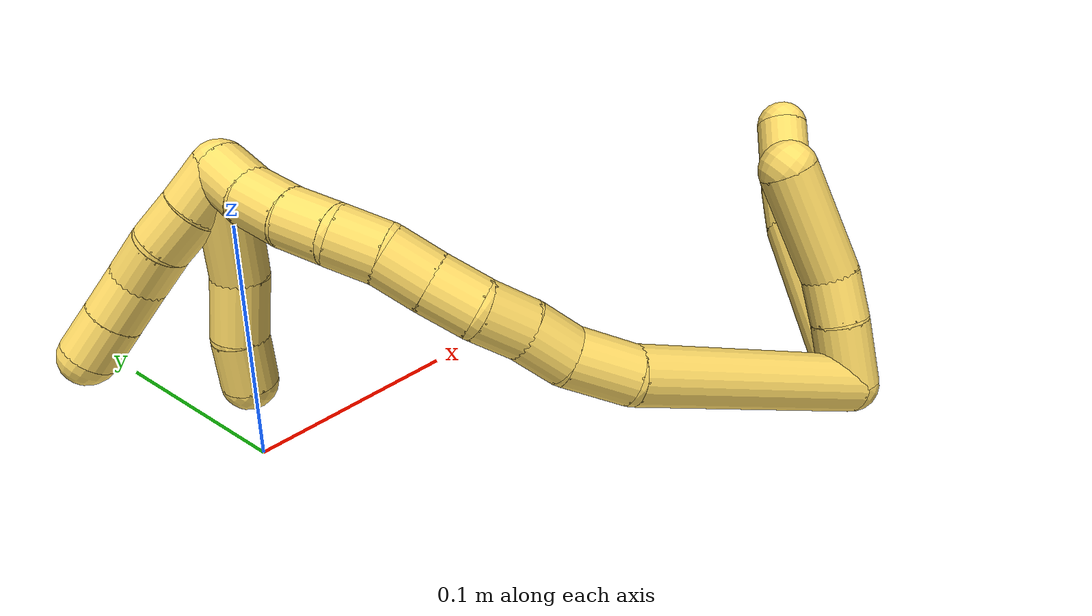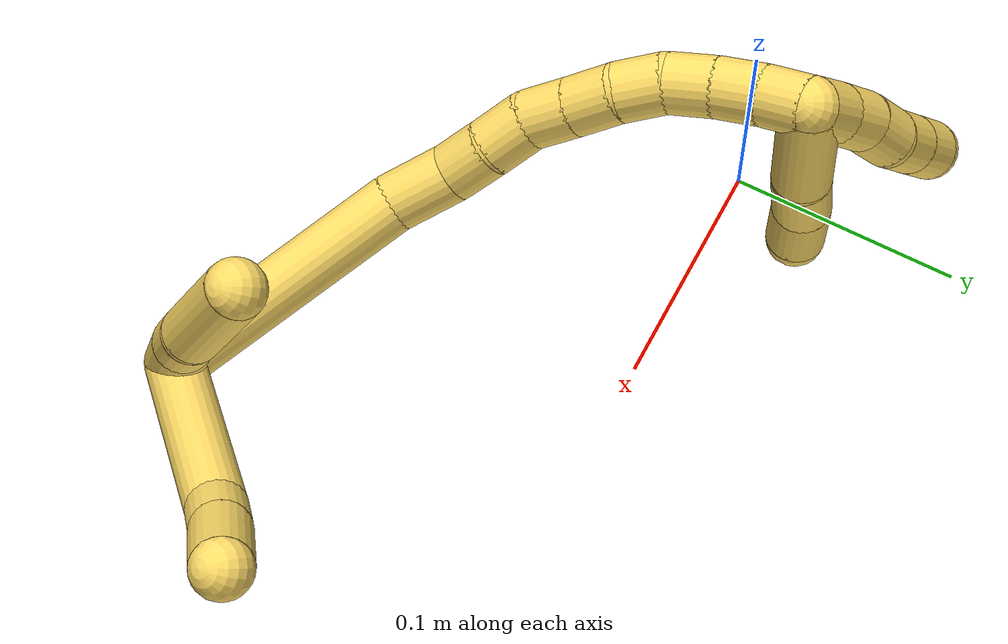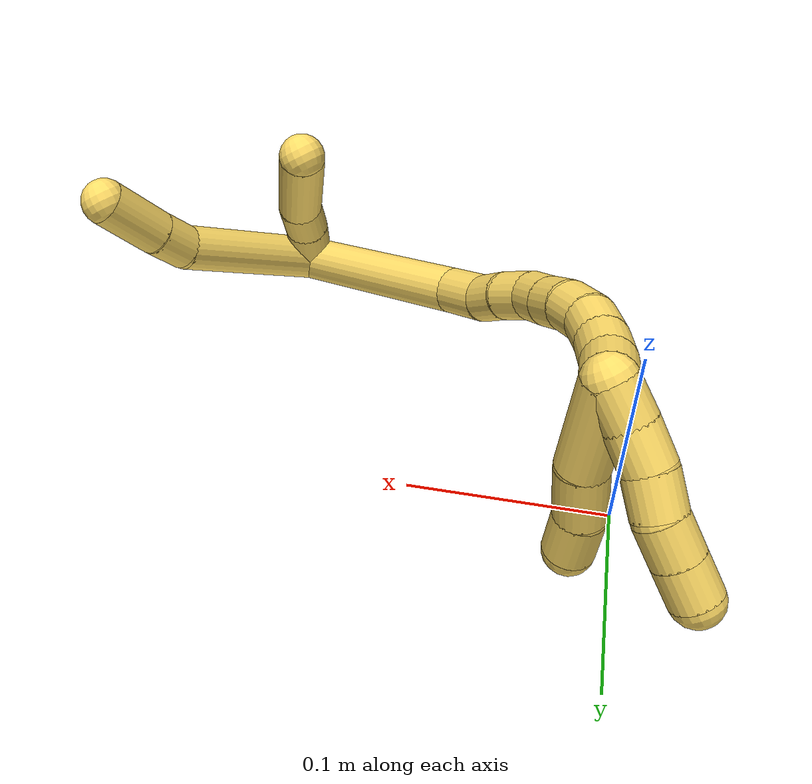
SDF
<sdf version="1.7">
 <world name="default">
  <model name="5">
   <static>0</static>
   <link name="5">
    <collision name="collision-cylinder-e_1_2_8">
     <pose>0.006492 0.041274 0.019442 -1.13058 0.141333 -0.089743</pose>
     <geometry><cylinder><radius>0.0125</radius><length>0.092167</length></cylinder></geometry>
     <surface>
      <friction><ode><mu>1.16</mu><mu2>1.16</mu2><slip1>0</slip1><slip2>0</slip2></ode></friction>
      <contact><ode><kp>1e+06</kp><kd>1</kd><max_vel>0</max_vel><min_depth>0.001</min_depth></ode></contact>
     </surface>
    </collision>
    <visual name="visual-cylinder-e_1_2_8">
     <pose>0.006492 0.041274 0.019442 -1.13058 0.141333 -0.089743</pose>
     <geometry><cylinder><radius>0.0125</radius><length>0.092167</length></cylinder></geometry>
     <material><ambient>1 0.858824 0.4 1</ambient></material>
    </visual>
    <collision name="collision-cylinder-e_2_8_9">
     <pose>0.012063 0.090823 0.04567 -0.88391 -0.085723 0.040581</pose>
     <geometry><cylinder><radius>0.0125</radius><length>0.021481</length></cylinder></geometry>
     <surface>
      <friction><ode><mu>1.16</mu><mu2>1.16</mu2><slip1>0</slip1><slip2>0</slip2></ode></friction>
      <contact><ode><kp>1e+06</kp><kd>1</kd><max_vel>0</max_vel><min_depth>0.001</min_depth></ode></contact>
     </surface>
    </collision>
    <visual name="visual-cylinder-e_2_8_9">
     <pose>0.012063 0.090823 0.04567 -0.88391 -0.085723 0.040581</pose>
     <geometry><cylinder><radius>0.0125</radius><length>0.021481</length></cylinder></geometry>
     <material><ambient>1 0.858824 0.4 1</ambient></material>
    </visual>
    <collision name="collision-cylinder-e_3_9_6">
     <pose>0.009632 0.112243 0.064916 -0.812153 -0.083272 0.035822</pose>
     <geometry><cylinder><radius>0.0125</radius><length>0.036351</length></cylinder></geometry>
     <surface>
      <friction><ode><mu>1.16</mu><mu2>1.16</mu2><slip1>0</slip1><slip2>0</slip2></ode></friction>
      <contact><ode><kp>1e+06</kp><kd>1</kd><max_vel>0</max_vel><min_depth>0.001</min_depth></ode></contact>
     </surface>
    </collision>
    <visual name="visual-cylinder-e_3_9_6">
     <pose>0.009632 0.112243 0.064916 -0.812153 -0.083272 0.035822</pose>
     <geometry><cylinder><radius>0.0125</radius><length>0.036351</length></cylinder></geometry>
     <material><ambient>1 0.858824 0.4 1</ambient></material>
    </visual>
    <collision name="collision-cylinder-e_1_2_10">
     <pose>-0.008957 0.006946 0.009289 -0.642064 -0.657572 0.225935</pose>
     <geometry><cylinder><radius>0.0125</radius><length>0.029309</length></cylinder></geometry>
     <surface>
      <friction><ode><mu>1.16</mu><mu2>1.16</mu2><slip1>0</slip1><slip2>0</slip2></ode></friction>
      <contact><ode><kp>1e+06</kp><kd>1</kd><max_vel>0</max_vel><min_depth>0.001</min_depth></ode></contact>
     </surface>
    </collision>
    <visual name="visual-cylinder-e_1_2_10">
     <pose>-0.008957 0.006946 0.009289 -0.642064 -0.657572 0.225935</pose>
     <geometry><cylinder><radius>0.0125</radius><length>0.029309</length></cylinder></geometry>
     <material><ambient>1 0.858824 0.4 1</ambient></material>
    </visual>
    <collision name="collision-cylinder-e_2_10_11">
     <pose>-0.023647 0.01972 0.024855 -0.748335 -0.589874 0.237459</pose>
     <geometry><cylinder><radius>0.0125</radius><length>0.020613</length></cylinder></geometry>
     <surface>
      <friction><ode><mu>1.16</mu><mu2>1.16</mu2><slip1>0</slip1><slip2>0</slip2></ode></friction>
      <contact><ode><kp>1e+06</kp><kd>1</kd><max_vel>0</max_vel><min_depth>0.001</min_depth></ode></contact>
     </surface>
    </collision>
    <visual name="visual-cylinder-e_2_10_11">
     <pose>-0.023647 0.01972 0.024855 -0.748335 -0.589874 0.237459</pose>
     <geometry><cylinder><radius>0.0125</radius><length>0.020613</length></cylinder></geometry>
     <material><ambient>1 0.858824 0.4 1</ambient></material>
    </visual>
    <collision name="collision-cylinder-e_3_11_5">
     <pose>-0.047564 0.038604 0.042347 -0.861069 -0.812849 0.390295</pose>
     <geometry><cylinder><radius>0.0125</radius><length>0.050078</length></cylinder></geometry>
     <surface>
      <friction><ode><mu>1.16</mu><mu2>1.16</mu2><slip1>0</slip1><slip2>0</slip2></ode></friction>
      <contact><ode><kp>1e+06</kp><kd>1</kd><max_vel>0</max_vel><min_depth>0.001</min_depth></ode></contact>
     </surface>
    </collision>
    <visual name="visual-cylinder-e_3_11_5">
     <pose>-0.047564 0.038604 0.042347 -0.861069 -0.812849 0.390295</pose>
     <geometry><cylinder><radius>0.0125</radius><length>0.050078</length></cylinder></geometry>
     <material><ambient>1 0.858824 0.4 1</ambient></material>
    </visual>
    <collision name="collision-cylinder-e_1_2_12">
     <pose>-0.048728 0.011153 -0.024053 -2.70743 -1.0725 2.43091</pose>
     <geometry><cylinder><radius>0.0125</radius><length>0.110948</length></cylinder></geometry>
     <surface>
      <friction><ode><mu>1.16</mu><mu2>1.16</mu2><slip1>0</slip1><slip2>0</slip2></ode></friction>
      <contact><ode><kp>1e+06</kp><kd>1</kd><max_vel>0</max_vel><min_depth>0.001</min_depth></ode></contact>
     </surface>
    </collision>
    <visual name="visual-cylinder-e_1_2_12">
     <pose>-0.048728 0.011153 -0.024053 -2.70743 -1.0725 2.43091</pose>
     <geometry><cylinder><radius>0.0125</radius><length>0.110948</length></cylinder></geometry>
     <material><ambient>1 0.858824 0.4 1</ambient></material>
    </visual>
    <collision name="collision-cylinder-e_2_12_13">
     <pose>-0.10929 0.028436 -0.052298 -2.17066 -1.01031 1.61787</pose>
     <geometry><cylinder><radius>0.0125</radius><length>0.027942</length></cylinder></geometry>
     <surface>
      <friction><ode><mu>1.16</mu><mu2>1.16</mu2><slip1>0</slip1><slip2>0</slip2></ode></friction>
      <contact><ode><kp>1e+06</kp><kd>1</kd><max_vel>0</max_vel><min_depth>0.001</min_depth></ode></contact>
     </surface>
    </collision>
    <visual name="visual-cylinder-e_2_12_13">
     <pose>-0.10929 0.028436 -0.052298 -2.17066 -1.01031 1.61787</pose>
     <geometry><cylinder><radius>0.0125</radius><length>0.027942</length></cylinder></geometry>
     <material><ambient>1 0.858824 0.4 1</ambient></material>
    </visual>
    <collision name="collision-cylinder-e_3_13_14">
     <pose>-0.130135 0.039299 -0.056978 -1.6732 -1.08495 1.17774</pose>
     <geometry><cylinder><radius>0.0125</radius><length>0.020381</length></cylinder></geometry>
     <surface>
      <friction><ode><mu>1.16</mu><mu2>1.16</mu2><slip1>0</slip1><slip2>0</slip2></ode></friction>
      <contact><ode><kp>1e+06</kp><kd>1</kd><max_vel>0</max_vel><min_depth>0.001</min_depth></ode></contact>
     </surface>
    </collision>
    <visual name="visual-cylinder-e_3_13_14">
     <pose>-0.130135 0.039299 -0.056978 -1.6732 -1.08495 1.17774</pose>
     <geometry><cylinder><radius>0.0125</radius><length>0.020381</length></cylinder></geometry>
     <material><ambient>1 0.858824 0.4 1</ambient></material>
    </visual>
    <collision name="collision-cylinder-e_4_14_15">
     <pose>-0.148362 0.04797 -0.059164 -1.97843 -1.13529 1.54025</pose>
     <geometry><cylinder><radius>0.0125</radius><length>0.02033</length></cylinder></geometry>
     <surface>
      <friction><ode><mu>1.16</mu><mu2>1.16</mu2><slip1>0</slip1><slip2>0</slip2></ode></friction>
      <contact><ode><kp>1e+06</kp><kd>1</kd><max_vel>0</max_vel><min_depth>0.001</min_depth></ode></contact>
     </surface>
    </collision>
    <visual name="visual-cylinder-e_4_14_15">
     <pose>-0.148362 0.04797 -0.059164 -1.97843 -1.13529 1.54025</pose>
     <geometry><cylinder><radius>0.0125</radius><length>0.02033</length></cylinder></geometry>
     <material><ambient>1 0.858824 0.4 1</ambient></material>
    </visual>
    <collision name="collision-cylinder-e_5_15_16">
     <pose>-0.164956 0.05858 -0.06247 -1.80698 -0.821487 1.00994</pose>
     <geometry><cylinder><radius>0.0125</radius><length>0.020155</length></cylinder></geometry>
     <surface>
      <friction><ode><mu>1.16</mu><mu2>1.16</mu2><slip1>0</slip1><slip2>0</slip2></ode></friction>
      <contact><ode><kp>1e+06</kp><kd>1</kd><max_vel>0</max_vel><min_depth>0.001</min_depth></ode></contact>
     </surface>
    </collision>
    <visual name="visual-cylinder-e_5_15_16">
     <pose>-0.164956 0.05858 -0.06247 -1.80698 -0.821487 1.00994</pose>
     <geometry><cylinder><radius>0.0125</radius><length>0.020155</length></cylinder></geometry>
     <material><ambient>1 0.858824 0.4 1</ambient></material>
    </visual>
    <collision name="collision-cylinder-e_6_16_17">
     <pose>-0.179806 0.07191 -0.06522 -1.74088 -0.835768 0.969711</pose>
     <geometry><cylinder><radius>0.0125</radius><length>0.020143</length></cylinder></geometry>
     <surface>
      <friction><ode><mu>1.16</mu><mu2>1.16</mu2><slip1>0</slip1><slip2>0</slip2></ode></friction>
      <contact><ode><kp>1e+06</kp><kd>1</kd><max_vel>0</max_vel><min_depth>0.001</min_depth></ode></contact>
     </surface>
    </collision>
    <visual name="visual-cylinder-e_6_16_17">
     <pose>-0.179806 0.07191 -0.06522 -1.74088 -0.835768 0.969711</pose>
     <geometry><cylinder><radius>0.0125</radius><length>0.020143</length></cylinder></geometry>
     <material><ambient>1 0.858824 0.4 1</ambient></material>
    </visual>
    <collision name="collision-cylinder-e_7_17_18">
     <pose>-0.194068 0.085283 -0.069481 -2.0054 -0.742174 1.09493</pose>
     <geometry><cylinder><radius>0.0125</radius><length>0.020095</length></cylinder></geometry>
     <surface>
      <friction><ode><mu>1.16</mu><mu2>1.16</mu2><slip1>0</slip1><slip2>0</slip2></ode></friction>
      <contact><ode><kp>1e+06</kp><kd>1</kd><max_vel>0</max_vel><min_depth>0.001</min_depth></ode></contact>
     </surface>
    </collision>
    <visual name="visual-cylinder-e_7_17_18">
     <pose>-0.194068 0.085283 -0.069481 -2.0054 -0.742174 1.09493</pose>
     <geometry><cylinder><radius>0.0125</radius><length>0.020095</length></cylinder></geometry>
     <material><ambient>1 0.858824 0.4 1</ambient></material>
    </visual>
    <collision name="collision-cylinder-e_8_18_19">
     <pose>-0.20533 0.100233 -0.076095 -1.9724 -0.463539 0.685159</pose>
     <geometry><cylinder><radius>0.0125</radius><length>0.020001</length></cylinder></geometry>
     <surface>
      <friction><ode><mu>1.16</mu><mu2>1.16</mu2><slip1>0</slip1><slip2>0</slip2></ode></friction>
      <contact><ode><kp>1e+06</kp><kd>1</kd><max_vel>0</max_vel><min_depth>0.001</min_depth></ode></contact>
     </surface>
    </collision>
    <visual name="visual-cylinder-e_8_18_19">
     <pose>-0.20533 0.100233 -0.076095 -1.9724 -0.463539 0.685159</pose>
     <geometry><cylinder><radius>0.0125</radius><length>0.020001</length></cylinder></geometry>
     <material><ambient>1 0.858824 0.4 1</ambient></material>
    </visual>
    <collision name="collision-cylinder-e_9_19_20">
     <pose>-0.213615 0.117363 -0.08211 -1.84666 -0.391181 0.512469</pose>
     <geometry><cylinder><radius>0.0125</radius><length>0.020003</length></cylinder></geometry>
     <surface>
      <friction><ode><mu>1.16</mu><mu2>1.16</mu2><slip1>0</slip1><slip2>0</slip2></ode></friction>
      <contact><ode><kp>1e+06</kp><kd>1</kd><max_vel>0</max_vel><min_depth>0.001</min_depth></ode></contact>
     </surface>
    </collision>
    <visual name="visual-cylinder-e_9_19_20">
     <pose>-0.213615 0.117363 -0.08211 -1.84666 -0.391181 0.512469</pose>
     <geometry><cylinder><radius>0.0125</radius><length>0.020003</length></cylinder></geometry>
     <material><ambient>1 0.858824 0.4 1</ambient></material>
    </visual>
    <collision name="collision-cylinder-e_10_20_1">
     <pose>-0.220612 0.135696 -0.085547 -1.66781 -0.323942 0.356336</pose>
     <geometry><cylinder><radius>0.0125</radius><length>0.020003</length></cylinder></geometry>
     <surface>
      <friction><ode><mu>1.16</mu><mu2>1.16</mu2><slip1>0</slip1><slip2>0</slip2></ode></friction>
      <contact><ode><kp>1e+06</kp><kd>1</kd><max_vel>0</max_vel><min_depth>0.001</min_depth></ode></contact>
     </surface>
    </collision>
    <visual name="visual-cylinder-e_10_20_1">
     <pose>-0.220612 0.135696 -0.085547 -1.66781 -0.323942 0.356336</pose>
     <geometry><cylinder><radius>0.0125</radius><length>0.020003</length></cylinder></geometry>
     <material><ambient>1 0.858824 0.4 1</ambient></material>
    </visual>
    <collision name="collision-cylinder-e_1_1_21">
     <pose>-0.208028 0.142178 -0.104166 2.97615 0.720868 2.70852</pose>
     <geometry><cylinder><radius>0.0125</radius><length>0.047776</length></cylinder></geometry>
     <surface>
      <friction><ode><mu>1.16</mu><mu2>1.16</mu2><slip1>0</slip1><slip2>0</slip2></ode></friction>
      <contact><ode><kp>1e+06</kp><kd>1</kd><max_vel>0</max_vel><min_depth>0.001</min_depth></ode></contact>
     </surface>
    </collision>
    <visual name="visual-cylinder-e_1_1_21">
     <pose>-0.208028 0.142178 -0.104166 2.97615 0.720868 2.70852</pose>
     <geometry><cylinder><radius>0.0125</radius><length>0.047776</length></cylinder></geometry>
     <material><ambient>1 0.858824 0.4 1</ambient></material>
    </visual>
    <collision name="collision-cylinder-e_2_21_22">
     <pose>-0.185072 0.136427 -0.133782 2.91122 0.531114 2.3372</pose>
     <geometry><cylinder><radius>0.0125</radius><length>0.02839</length></cylinder></geometry>
     <surface>
      <friction><ode><mu>1.16</mu><mu2>1.16</mu2><slip1>0</slip1><slip2>0</slip2></ode></friction>
      <contact><ode><kp>1e+06</kp><kd>1</kd><max_vel>0</max_vel><min_depth>0.001</min_depth></ode></contact>
     </surface>
    </collision>
    <visual name="visual-cylinder-e_2_21_22">
     <pose>-0.185072 0.136427 -0.133782 2.91122 0.531114 2.3372</pose>
     <geometry><cylinder><radius>0.0125</radius><length>0.02839</length></cylinder></geometry>
     <material><ambient>1 0.858824 0.4 1</ambient></material>
    </visual>
    <collision name="collision-cylinder-e_3_22_4">
     <pose>-0.169925 0.13162 -0.154339 2.91271 0.731076 2.55809</pose>
     <geometry><cylinder><radius>0.0125</radius><length>0.023834</length></cylinder></geometry>
     <surface>
      <friction><ode><mu>1.16</mu><mu2>1.16</mu2><slip1>0</slip1><slip2>0</slip2></ode></friction>
      <contact><ode><kp>1e+06</kp><kd>1</kd><max_vel>0</max_vel><min_depth>0.001</min_depth></ode></contact>
     </surface>
    </collision>
    <visual name="visual-cylinder-e_3_22_4">
     <pose>-0.169925 0.13162 -0.154339 2.91271 0.731076 2.55809</pose>
     <geometry><cylinder><radius>0.0125</radius><length>0.023834</length></cylinder></geometry>
     <material><ambient>1 0.858824 0.4 1</ambient></material>
    </visual>
    <collision name="collision-cylinder-e_1_1_23">
     <pose>-0.223998 0.145176 -0.096463 -3.13726 -0.020291 2.72049</pose>
     <geometry><cylinder><radius>0.0125</radius><length>0.02</length></cylinder></geometry>
     <surface>
      <friction><ode><mu>1.16</mu><mu2>1.16</mu2><slip1>0</slip1><slip2>0</slip2></ode></friction>
      <contact><ode><kp>1e+06</kp><kd>1</kd><max_vel>0</max_vel><min_depth>0.001</min_depth></ode></contact>
     </surface>
    </collision>
    <visual name="visual-cylinder-e_1_1_23">
     <pose>-0.223998 0.145176 -0.096463 -3.13726 -0.020291 2.72049</pose>
     <geometry><cylinder><radius>0.0125</radius><length>0.02</length></cylinder></geometry>
     <material><ambient>1 0.858824 0.4 1</ambient></material>
    </visual>
    <collision name="collision-cylinder-e_2_23_24">
     <pose>-0.224355 0.146194 -0.116412 -3.04404 -0.015437 0.313638</pose>
     <geometry><cylinder><radius>0.0125</radius><length>0.02</length></cylinder></geometry>
     <surface>
      <friction><ode><mu>1.16</mu><mu2>1.16</mu2><slip1>0</slip1><slip2>0</slip2></ode></friction>
      <contact><ode><kp>1e+06</kp><kd>1</kd><max_vel>0</max_vel><min_depth>0.001</min_depth></ode></contact>
     </surface>
    </collision>
    <visual name="visual-cylinder-e_2_23_24">
     <pose>-0.224355 0.146194 -0.116412 -3.04404 -0.015437 0.313638</pose>
     <geometry><cylinder><radius>0.0125</radius><length>0.02</length></cylinder></geometry>
     <material><ambient>1 0.858824 0.4 1</ambient></material>
    </visual>
    <collision name="collision-cylinder-e_3_24_25">
     <pose>-0.223176 0.149021 -0.136099 -2.95344 0.133746 -1.23456</pose>
     <geometry><cylinder><radius>0.0125</radius><length>0.02</length></cylinder></geometry>
     <surface>
      <friction><ode><mu>1.16</mu><mu2>1.16</mu2><slip1>0</slip1><slip2>0</slip2></ode></friction>
      <contact><ode><kp>1e+06</kp><kd>1</kd><max_vel>0</max_vel><min_depth>0.001</min_depth></ode></contact>
     </surface>
    </collision>
    <visual name="visual-cylinder-e_3_24_25">
     <pose>-0.223176 0.149021 -0.136099 -2.95344 0.133746 -1.23456</pose>
     <geometry><cylinder><radius>0.0125</radius><length>0.02</length></cylinder></geometry>
     <material><ambient>1 0.858824 0.4 1</ambient></material>
    </visual>
    <collision name="collision-cylinder-e_4_25_26">
     <pose>-0.221573 0.150579 -0.155827 3.11202 0.026963 1.47869</pose>
     <geometry><cylinder><radius>0.0125</radius><length>0.02</length></cylinder></geometry>
     <surface>
      <friction><ode><mu>1.16</mu><mu2>1.16</mu2><slip1>0</slip1><slip2>0</slip2></ode></friction>
      <contact><ode><kp>1e+06</kp><kd>1</kd><max_vel>0</max_vel><min_depth>0.001</min_depth></ode></contact>
     </surface>
    </collision>
    <visual name="visual-cylinder-e_4_25_26">
     <pose>-0.221573 0.150579 -0.155827 3.11202 0.026963 1.47869</pose>
     <geometry><cylinder><radius>0.0125</radius><length>0.02</length></cylinder></geometry>
     <material><ambient>1 0.858824 0.4 1</ambient></material>
    </visual>
    <collision name="collision-cylinder-e_5_26_3">
     <pose>-0.221071 0.14998 -0.175812 3.11117 0.023282 1.30627</pose>
     <geometry><cylinder><radius>0.0125</radius><length>0.02</length></cylinder></geometry>
     <surface>
      <friction><ode><mu>1.16</mu><mu2>1.16</mu2><slip1>0</slip1><slip2>0</slip2></ode></friction>
      <contact><ode><kp>1e+06</kp><kd>1</kd><max_vel>0</max_vel><min_depth>0.001</min_depth></ode></contact>
     </surface>
    </collision>
    <visual name="visual-cylinder-e_5_26_3">
     <pose>-0.221071 0.14998 -0.175812 3.11117 0.023282 1.30627</pose>
     <geometry><cylinder><radius>0.0125</radius><length>0.02</length></cylinder></geometry>
     <material><ambient>1 0.858824 0.4 1</ambient></material>
    </visual>
    <collision name="collision-sphere-3">
     <pose>-0.220838 0.149676 -0.185804 0 -0 0</pose>
     <geometry><sphere><radius>0.0125</radius></sphere></geometry>
     <surface>
      <friction><ode><mu>1.16</mu><mu2>1.16</mu2><slip1>0</slip1><slip2>0</slip2></ode></friction>
      <contact><ode><kp>1e+06</kp><kd>1</kd><max_vel>0</max_vel><min_depth>0.001</min_depth></ode></contact>
     </surface>
    </collision>
    <visual name="visual-sphere-3">
     <pose>-0.220838 0.149676 -0.185804 0 -0 0</pose>
     <geometry><sphere><radius>0.0125</radius></sphere></geometry>
     <material><ambient>1 0.858824 0.4 1</ambient></material>
    </visual>
    <collision name="collision-sphere-26">
     <pose>-0.221303 0.150284 -0.165819 0 -0 0</pose>
     <geometry><sphere><radius>0.0125</radius></sphere></geometry>
     <surface>
      <friction><ode><mu>1.16</mu><mu2>1.16</mu2><slip1>0</slip1><slip2>0</slip2></ode></friction>
      <contact><ode><kp>1e+06</kp><kd>1</kd><max_vel>0</max_vel><min_depth>0.001</min_depth></ode></contact>
     </surface>
    </collision>
    <visual name="visual-sphere-26">
     <pose>-0.221303 0.150284 -0.165819 0 -0 0</pose>
     <geometry><sphere><radius>0.0125</radius></sphere></geometry>
     <material><ambient>1 0.858824 0.4 1</ambient></material>
    </visual>
    <collision name="collision-sphere-25">
     <pose>-0.221843 0.150875 -0.145835 0 -0 0</pose>
     <geometry><sphere><radius>0.0125</radius></sphere></geometry>
     <surface>
      <friction><ode><mu>1.16</mu><mu2>1.16</mu2><slip1>0</slip1><slip2>0</slip2></ode></friction>
      <contact><ode><kp>1e+06</kp><kd>1</kd><max_vel>0</max_vel><min_depth>0.001</min_depth></ode></contact>
     </surface>
    </collision>
    <visual name="visual-sphere-25">
     <pose>-0.221843 0.150875 -0.145835 0 -0 0</pose>
     <geometry><sphere><radius>0.0125</radius></sphere></geometry>
     <material><ambient>1 0.858824 0.4 1</ambient></material>
    </visual>
    <collision name="collision-sphere-24">
     <pose>-0.22451 0.147167 -0.126363 0 -0 0</pose>
     <geometry><sphere><radius>0.0125</radius></sphere></geometry>
     <surface>
      <friction><ode><mu>1.16</mu><mu2>1.16</mu2><slip1>0</slip1><slip2>0</slip2></ode></friction>
      <contact><ode><kp>1e+06</kp><kd>1</kd><max_vel>0</max_vel><min_depth>0.001</min_depth></ode></contact>
     </surface>
    </collision>
    <visual name="visual-sphere-24">
     <pose>-0.22451 0.147167 -0.126363 0 -0 0</pose>
     <geometry><sphere><radius>0.0125</radius></sphere></geometry>
     <material><ambient>1 0.858824 0.4 1</ambient></material>
    </visual>
    <collision name="collision-sphere-23">
     <pose>-0.224201 0.14522 -0.106461 0 -0 0</pose>
     <geometry><sphere><radius>0.0125</radius></sphere></geometry>
     <surface>
      <friction><ode><mu>1.16</mu><mu2>1.16</mu2><slip1>0</slip1><slip2>0</slip2></ode></friction>
      <contact><ode><kp>1e+06</kp><kd>1</kd><max_vel>0</max_vel><min_depth>0.001</min_depth></ode></contact>
     </surface>
    </collision>
    <visual name="visual-sphere-23">
     <pose>-0.224201 0.14522 -0.106461 0 -0 0</pose>
     <geometry><sphere><radius>0.0125</radius></sphere></geometry>
     <material><ambient>1 0.858824 0.4 1</ambient></material>
    </visual>
    <collision name="collision-sphere-4">
     <pose>-0.161969 0.129607 -0.162979 0 -0 0</pose>
     <geometry><sphere><radius>0.0125</radius></sphere></geometry>
     <surface>
      <friction><ode><mu>1.16</mu><mu2>1.16</mu2><slip1>0</slip1><slip2>0</slip2></ode></friction>
      <contact><ode><kp>1e+06</kp><kd>1</kd><max_vel>0</max_vel><min_depth>0.001</min_depth></ode></contact>
     </surface>
    </collision>
    <visual name="visual-sphere-4">
     <pose>-0.161969 0.129607 -0.162979 0 -0 0</pose>
     <geometry><sphere><radius>0.0125</radius></sphere></geometry>
     <material><ambient>1 0.858824 0.4 1</ambient></material>
    </visual>
    <collision name="collision-sphere-22">
     <pose>-0.177882 0.133633 -0.145698 0 -0 0</pose>
     <geometry><sphere><radius>0.0125</radius></sphere></geometry>
     <surface>
      <friction><ode><mu>1.16</mu><mu2>1.16</mu2><slip1>0</slip1><slip2>0</slip2></ode></friction>
      <contact><ode><kp>1e+06</kp><kd>1</kd><max_vel>0</max_vel><min_depth>0.001</min_depth></ode></contact>
     </surface>
    </collision>
    <visual name="visual-sphere-22">
     <pose>-0.177882 0.133633 -0.145698 0 -0 0</pose>
     <geometry><sphere><radius>0.0125</radius></sphere></geometry>
     <material><ambient>1 0.858824 0.4 1</ambient></material>
    </visual>
    <collision name="collision-sphere-21">
     <pose>-0.192261 0.139222 -0.121866 0 -0 0</pose>
     <geometry><sphere><radius>0.0125</radius></sphere></geometry>
     <surface>
      <friction><ode><mu>1.16</mu><mu2>1.16</mu2><slip1>0</slip1><slip2>0</slip2></ode></friction>
      <contact><ode><kp>1e+06</kp><kd>1</kd><max_vel>0</max_vel><min_depth>0.001</min_depth></ode></contact>
     </surface>
    </collision>
    <visual name="visual-sphere-21">
     <pose>-0.192261 0.139222 -0.121866 0 -0 0</pose>
     <geometry><sphere><radius>0.0125</radius></sphere></geometry>
     <material><ambient>1 0.858824 0.4 1</ambient></material>
    </visual>
    <collision name="collision-sphere-1">
     <pose>-0.223795 0.145133 -0.086465 0 -0 0</pose>
     <geometry><sphere><radius>0.0125</radius></sphere></geometry>
     <surface>
      <friction><ode><mu>1.16</mu><mu2>1.16</mu2><slip1>0</slip1><slip2>0</slip2></ode></friction>
      <contact><ode><kp>1e+06</kp><kd>1</kd><max_vel>0</max_vel><min_depth>0.001</min_depth></ode></contact>
     </surface>
    </collision>
    <visual name="visual-sphere-1">
     <pose>-0.223795 0.145133 -0.086465 0 -0 0</pose>
     <geometry><sphere><radius>0.0125</radius></sphere></geometry>
     <material><ambient>1 0.858824 0.4 1</ambient></material>
    </visual>
    <collision name="collision-sphere-11">
     <pose>-0.02938 0.025547 0.031131 0 -0 0</pose>
     <geometry><sphere><radius>0.0125</radius></sphere></geometry>
     <surface>
      <friction><ode><mu>1.16</mu><mu2>1.16</mu2><slip1>0</slip1><slip2>0</slip2></ode></friction>
      <contact><ode><kp>1e+06</kp><kd>1</kd><max_vel>0</max_vel><min_depth>0.001</min_depth></ode></contact>
     </surface>
    </collision>
    <visual name="visual-sphere-11">
     <pose>-0.02938 0.025547 0.031131 0 -0 0</pose>
     <geometry><sphere><radius>0.0125</radius></sphere></geometry>
     <material><ambient>1 0.858824 0.4 1</ambient></material>
    </visual>
    <collision name="collision-sphere-10">
     <pose>-0.017914 0.013892 0.018578 0 -0 0</pose>
     <geometry><sphere><radius>0.0125</radius></sphere></geometry>
     <surface>
      <friction><ode><mu>1.16</mu><mu2>1.16</mu2><slip1>0</slip1><slip2>0</slip2></ode></friction>
      <contact><ode><kp>1e+06</kp><kd>1</kd><max_vel>0</max_vel><min_depth>0.001</min_depth></ode></contact>
     </surface>
    </collision>
    <visual name="visual-sphere-10">
     <pose>-0.017914 0.013892 0.018578 0 -0 0</pose>
     <geometry><sphere><radius>0.0125</radius></sphere></geometry>
     <material><ambient>1 0.858824 0.4 1</ambient></material>
    </visual>
    <collision name="collision-sphere-6">
     <pose>0.00812 0.125389 0.077377 0 -0 0</pose>
     <geometry><sphere><radius>0.0125</radius></sphere></geometry>
     <surface>
      <friction><ode><mu>1.16</mu><mu2>1.16</mu2><slip1>0</slip1><slip2>0</slip2></ode></friction>
      <contact><ode><kp>1e+06</kp><kd>1</kd><max_vel>0</max_vel><min_depth>0.001</min_depth></ode></contact>
     </surface>
    </collision>
    <visual name="visual-sphere-6">
     <pose>0.00812 0.125389 0.077377 0 -0 0</pose>
     <geometry><sphere><radius>0.0125</radius></sphere></geometry>
     <material><ambient>1 0.858824 0.4 1</ambient></material>
    </visual>
    <collision name="collision-sphere-9">
     <pose>0.011144 0.099097 0.052456 0 -0 0</pose>
     <geometry><sphere><radius>0.0125</radius></sphere></geometry>
     <surface>
      <friction><ode><mu>1.16</mu><mu2>1.16</mu2><slip1>0</slip1><slip2>0</slip2></ode></friction>
      <contact><ode><kp>1e+06</kp><kd>1</kd><max_vel>0</max_vel><min_depth>0.001</min_depth></ode></contact>
     </surface>
    </collision>
    <visual name="visual-sphere-9">
     <pose>0.011144 0.099097 0.052456 0 -0 0</pose>
     <geometry><sphere><radius>0.0125</radius></sphere></geometry>
     <material><ambient>1 0.858824 0.4 1</ambient></material>
    </visual>
    <collision name="collision-sphere-2">
     <geometry><sphere><radius>0.0125</radius></sphere></geometry>
     <surface>
      <friction><ode><mu>1.16</mu><mu2>1.16</mu2><slip1>0</slip1><slip2>0</slip2></ode></friction>
      <contact><ode><kp>1e+06</kp><kd>1</kd><max_vel>0</max_vel><min_depth>0.001</min_depth></ode></contact>
     </surface>
    </collision>
    <visual name="visual-sphere-2">
     <geometry><sphere><radius>0.0125</radius></sphere></geometry>
     <material><ambient>1 0.858824 0.4 1</ambient></material>
    </visual>
    <collision name="collision-sphere-19">
     <pose>-0.209801 0.108467 -0.079592 0 -0 0</pose>
     <geometry><sphere><radius>0.0125</radius></sphere></geometry>
     <surface>
      <friction><ode><mu>1.16</mu><mu2>1.16</mu2><slip1>0</slip1><slip2>0</slip2></ode></friction>
      <contact><ode><kp>1e+06</kp><kd>1</kd><max_vel>0</max_vel><min_depth>0.001</min_depth></ode></contact>
     </surface>
    </collision>
    <visual name="visual-sphere-19">
     <pose>-0.209801 0.108467 -0.079592 0 -0 0</pose>
     <geometry><sphere><radius>0.0125</radius></sphere></geometry>
     <material><ambient>1 0.858824 0.4 1</ambient></material>
    </visual>
    <collision name="collision-sphere-8">
     <pose>0.012983 0.082549 0.038884 0 -0 0</pose>
     <geometry><sphere><radius>0.0125</radius></sphere></geometry>
     <surface>
      <friction><ode><mu>1.16</mu><mu2>1.16</mu2><slip1>0</slip1><slip2>0</slip2></ode></friction>
      <contact><ode><kp>1e+06</kp><kd>1</kd><max_vel>0</max_vel><min_depth>0.001</min_depth></ode></contact>
     </surface>
    </collision>
    <visual name="visual-sphere-8">
     <pose>0.012983 0.082549 0.038884 0 -0 0</pose>
     <geometry><sphere><radius>0.0125</radius></sphere></geometry>
     <material><ambient>1 0.858824 0.4 1</ambient></material>
    </visual>
    <collision name="collision-sphere-5">
     <pose>-0.065749 0.05166 0.053563 0 -0 0</pose>
     <geometry><sphere><radius>0.0125</radius></sphere></geometry>
     <surface>
      <friction><ode><mu>1.16</mu><mu2>1.16</mu2><slip1>0</slip1><slip2>0</slip2></ode></friction>
      <contact><ode><kp>1e+06</kp><kd>1</kd><max_vel>0</max_vel><min_depth>0.001</min_depth></ode></contact>
     </surface>
    </collision>
    <visual name="visual-sphere-5">
     <pose>-0.065749 0.05166 0.053563 0 -0 0</pose>
     <geometry><sphere><radius>0.0125</radius></sphere></geometry>
     <material><ambient>1 0.858824 0.4 1</ambient></material>
    </visual>
    <collision name="collision-sphere-12">
     <pose>-0.097456 0.022305 -0.048106 0 -0 0</pose>
     <geometry><sphere><radius>0.0125</radius></sphere></geometry>
     <surface>
      <friction><ode><mu>1.16</mu><mu2>1.16</mu2><slip1>0</slip1><slip2>0</slip2></ode></friction>
      <contact><ode><kp>1e+06</kp><kd>1</kd><max_vel>0</max_vel><min_depth>0.001</min_depth></ode></contact>
     </surface>
    </collision>
    <visual name="visual-sphere-12">
     <pose>-0.097456 0.022305 -0.048106 0 -0 0</pose>
     <geometry><sphere><radius>0.0125</radius></sphere></geometry>
     <material><ambient>1 0.858824 0.4 1</ambient></material>
    </visual>
    <collision name="collision-sphere-13">
     <pose>-0.121123 0.034566 -0.056491 0 -0 0</pose>
     <geometry><sphere><radius>0.0125</radius></sphere></geometry>
     <surface>
      <friction><ode><mu>1.16</mu><mu2>1.16</mu2><slip1>0</slip1><slip2>0</slip2></ode></friction>
      <contact><ode><kp>1e+06</kp><kd>1</kd><max_vel>0</max_vel><min_depth>0.001</min_depth></ode></contact>
     </surface>
    </collision>
    <visual name="visual-sphere-13">
     <pose>-0.121123 0.034566 -0.056491 0 -0 0</pose>
     <geometry><sphere><radius>0.0125</radius></sphere></geometry>
     <material><ambient>1 0.858824 0.4 1</ambient></material>
    </visual>
    <collision name="collision-sphere-14">
     <pose>-0.139146 0.044033 -0.057464 0 -0 0</pose>
     <geometry><sphere><radius>0.0125</radius></sphere></geometry>
     <surface>
      <friction><ode><mu>1.16</mu><mu2>1.16</mu2><slip1>0</slip1><slip2>0</slip2></ode></friction>
      <contact><ode><kp>1e+06</kp><kd>1</kd><max_vel>0</max_vel><min_depth>0.001</min_depth></ode></contact>
     </surface>
    </collision>
    <visual name="visual-sphere-14">
     <pose>-0.139146 0.044033 -0.057464 0 -0 0</pose>
     <geometry><sphere><radius>0.0125</radius></sphere></geometry>
     <material><ambient>1 0.858824 0.4 1</ambient></material>
    </visual>
    <collision name="collision-sphere-15">
     <pose>-0.157578 0.051907 -0.060864 0 -0 0</pose>
     <geometry><sphere><radius>0.0125</radius></sphere></geometry>
     <surface>
      <friction><ode><mu>1.16</mu><mu2>1.16</mu2><slip1>0</slip1><slip2>0</slip2></ode></friction>
      <contact><ode><kp>1e+06</kp><kd>1</kd><max_vel>0</max_vel><min_depth>0.001</min_depth></ode></contact>
     </surface>
    </collision>
    <visual name="visual-sphere-15">
     <pose>-0.157578 0.051907 -0.060864 0 -0 0</pose>
     <geometry><sphere><radius>0.0125</radius></sphere></geometry>
     <material><ambient>1 0.858824 0.4 1</ambient></material>
    </visual>
    <collision name="collision-sphere-16">
     <pose>-0.172334 0.065254 -0.064076 0 -0 0</pose>
     <geometry><sphere><radius>0.0125</radius></sphere></geometry>
     <surface>
      <friction><ode><mu>1.16</mu><mu2>1.16</mu2><slip1>0</slip1><slip2>0</slip2></ode></friction>
      <contact><ode><kp>1e+06</kp><kd>1</kd><max_vel>0</max_vel><min_depth>0.001</min_depth></ode></contact>
     </surface>
    </collision>
    <visual name="visual-sphere-16">
     <pose>-0.172334 0.065254 -0.064076 0 -0 0</pose>
     <geometry><sphere><radius>0.0125</radius></sphere></geometry>
     <material><ambient>1 0.858824 0.4 1</ambient></material>
    </visual>
    <collision name="collision-sphere-17">
     <pose>-0.187277 0.078567 -0.066363 0 -0 0</pose>
     <geometry><sphere><radius>0.0125</radius></sphere></geometry>
     <surface>
      <friction><ode><mu>1.16</mu><mu2>1.16</mu2><slip1>0</slip1><slip2>0</slip2></ode></friction>
      <contact><ode><kp>1e+06</kp><kd>1</kd><max_vel>0</max_vel><min_depth>0.001</min_depth></ode></contact>
     </surface>
    </collision>
    <visual name="visual-sphere-17">
     <pose>-0.187277 0.078567 -0.066363 0 -0 0</pose>
     <geometry><sphere><radius>0.0125</radius></sphere></geometry>
     <material><ambient>1 0.858824 0.4 1</ambient></material>
    </visual>
    <collision name="collision-sphere-18">
     <pose>-0.200858 0.092 -0.072598 0 -0 0</pose>
     <geometry><sphere><radius>0.0125</radius></sphere></geometry>
     <surface>
      <friction><ode><mu>1.16</mu><mu2>1.16</mu2><slip1>0</slip1><slip2>0</slip2></ode></friction>
      <contact><ode><kp>1e+06</kp><kd>1</kd><max_vel>0</max_vel><min_depth>0.001</min_depth></ode></contact>
     </surface>
    </collision>
    <visual name="visual-sphere-18">
     <pose>-0.200858 0.092 -0.072598 0 -0 0</pose>
     <geometry><sphere><radius>0.0125</radius></sphere></geometry>
     <material><ambient>1 0.858824 0.4 1</ambient></material>
    </visual>
    <collision name="collision-sphere-20">
     <pose>-0.217428 0.12626 -0.084628 0 -0 0</pose>
     <geometry><sphere><radius>0.0125</radius></sphere></geometry>
     <surface>
      <friction><ode><mu>1.16</mu><mu2>1.16</mu2><slip1>0</slip1><slip2>0</slip2></ode></friction>
      <contact><ode><kp>1e+06</kp><kd>1</kd><max_vel>0</max_vel><min_depth>0.001</min_depth></ode></contact>
     </surface>
    </collision>
    <visual name="visual-sphere-20">
     <pose>-0.217428 0.12626 -0.084628 0 -0 0</pose>
     <geometry><sphere><radius>0.0125</radius></sphere></geometry>
     <material><ambient>1 0.858824 0.4 1</ambient></material>
    </visual>
    <inertial>
     <pose>-0.108291 0.074958 -0.044488 0 -0 0</pose>
     <mass>0.75</mass>
     <inertia>
      <ixx>7.4e-05</ixx>
      <ixy>0</ixy>
      <ixz>0</ixz>
      <iyy>0.000254</iyy>
      <iyz>0</iyz>
      <izz>-1.1e-05</izz>
     </inertia>
    </inertial>
   </link>
   <pose>0.189661 -0.166704 0.011869 0.273124 0.645074 -0.17426</pose>
  </model>
 </world>
</sdf>
